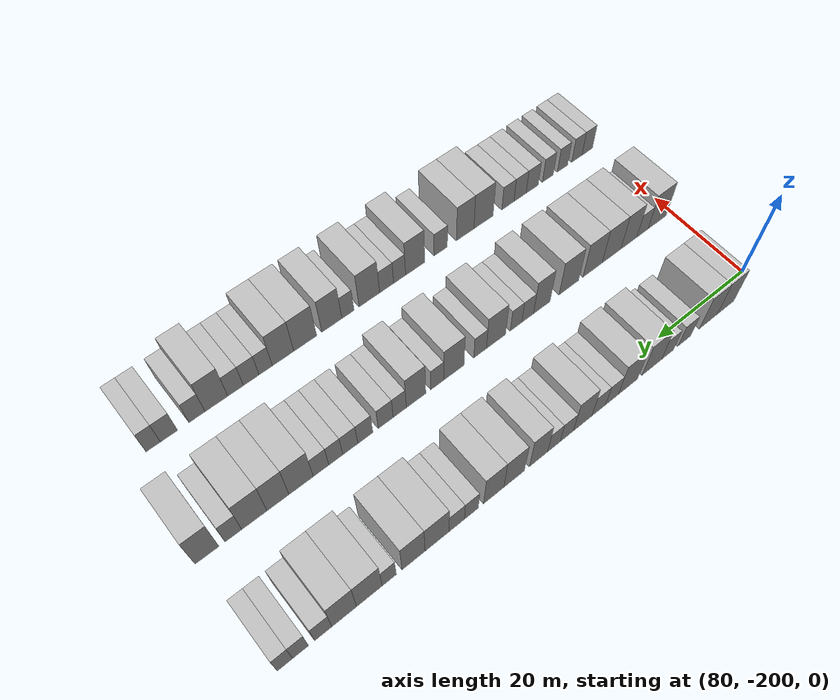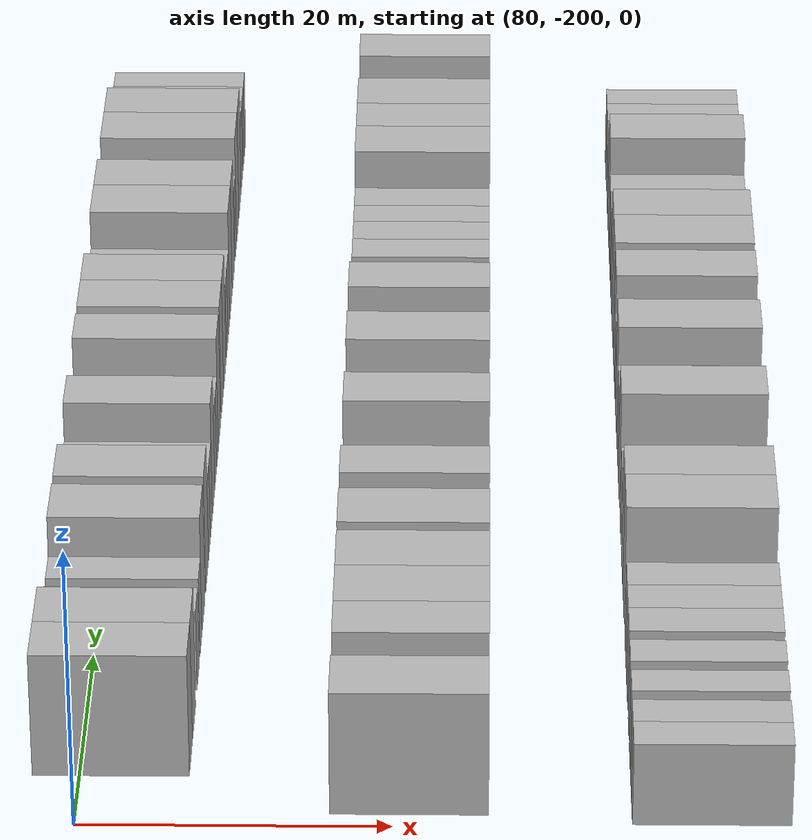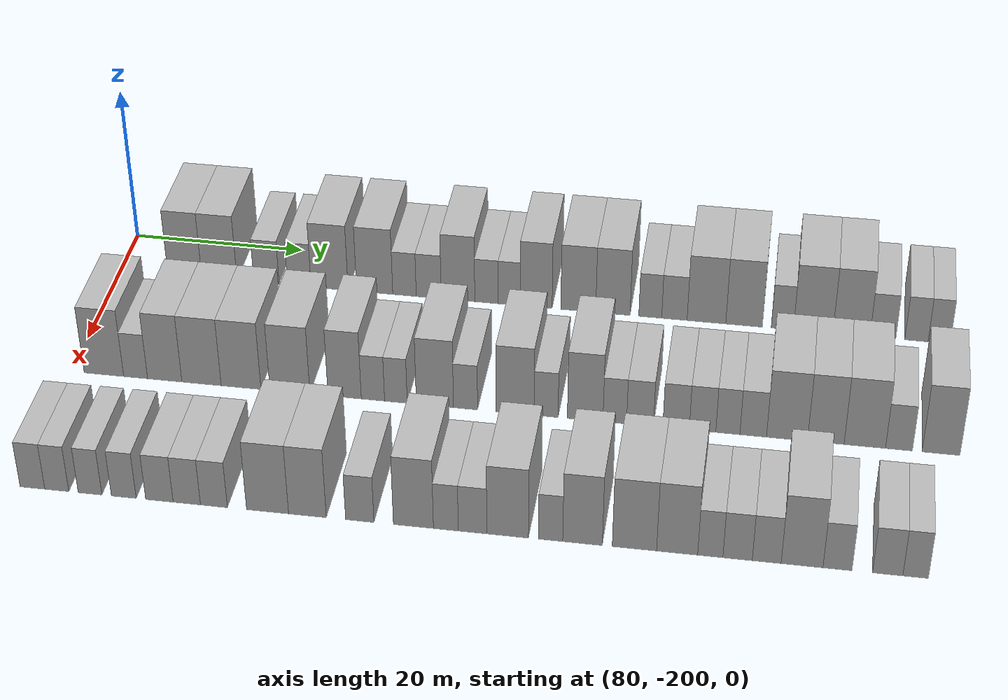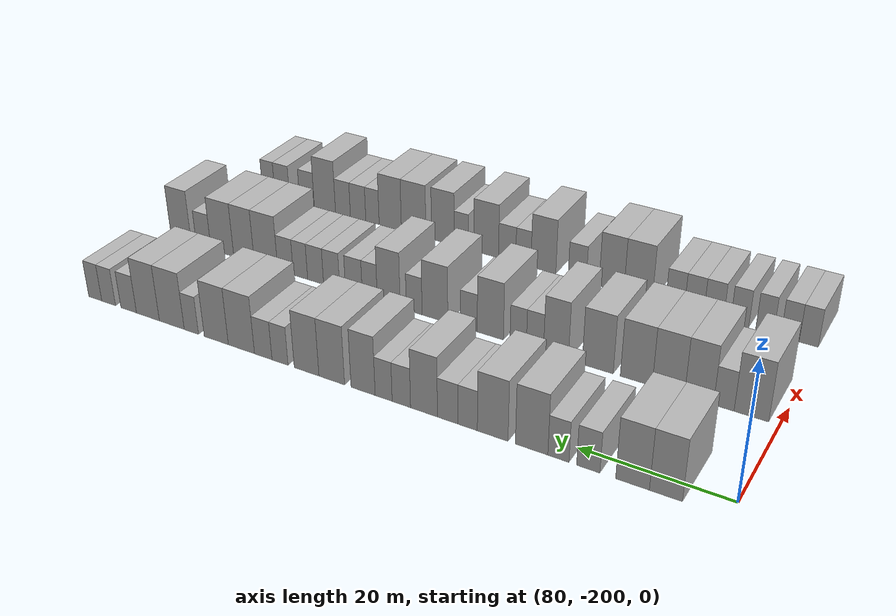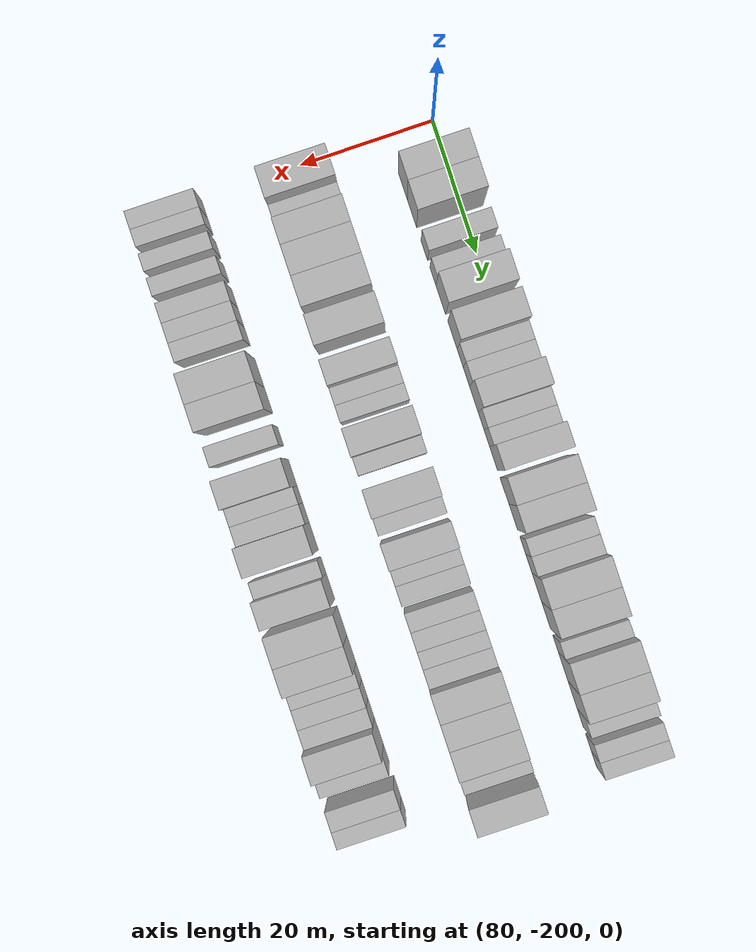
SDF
<sdf version="1.6">
 <world name="default">
  <model name="building_550">
   <static>1</static>
   <pose>82.0000 -192.3949 0 0.000000 0.000000 0.000000</pose>
   <link name="link">
    <pose>0 0 4.50 0 0 0</pose>
    <collision name="collision"><geometry><box><size>10.0000 4.0336 9.0000</size></box></geometry></collision>
    <visual name="visual">
     <cast_shadows>0</cast_shadows>
     <geometry><box><size>10.0000 4.0336 9.0000</size></box></geometry>
     <material>
      <script>
       <uri>model://HANNAS_wall/materials/scripts</uri>
       <uri>model://HANNAS_wall/materials/textures</uri>
       <name>vrc/HANNAS_wall</name>
      </script>
     </material>
    </visual>
   </link>
  </model>
  <model name="building_551">
   <static>1</static>
   <pose>82.0000 -188.2772 0 0.000000 0.000000 0.000000</pose>
   <link name="link">
    <pose>0 0 4.50 0 0 0</pose>
    <collision name="collision"><geometry><box><size>10.0000 4.2020 9.0000</size></box></geometry></collision>
    <visual name="visual">
     <cast_shadows>0</cast_shadows>
     <geometry><box><size>10.0000 4.2020 9.0000</size></box></geometry>
     <material>
      <script>
       <uri>model://HANNAS_wall/materials/scripts</uri>
       <uri>model://HANNAS_wall/materials/textures</uri>
       <name>vrc/HANNAS_wall</name>
      </script>
     </material>
    </visual>
   </link>
  </model>
  <model name="building_552">
   <static>1</static>
   <pose>82.0000 -182.6841 0 0.000000 0.000000 0.000000</pose>
   <link name="link">
    <pose>0 0 3.00 0 0 0</pose>
    <collision name="collision"><geometry><box><size>10.0000 2.9842 6.0000</size></box></geometry></collision>
    <visual name="visual">
     <cast_shadows>0</cast_shadows>
     <geometry><box><size>10.0000 2.9842 6.0000</size></box></geometry>
     <material>
      <script>
       <uri>model://HANNAS_wall/materials/scripts</uri>
       <uri>model://HANNAS_wall/materials/textures</uri>
       <name>vrc/HANNAS_wall</name>
      </script>
     </material>
    </visual>
   </link>
  </model>
  <model name="building_553">
   <static>1</static>
   <pose>82.0000 -178.8071 0 0.000000 0.000000 0.000000</pose>
   <link name="link">
    <pose>0 0 3.00 0 0 0</pose>
    <collision name="collision"><geometry><box><size>10.0000 2.7698 6.0000</size></box></geometry></collision>
    <visual name="visual">
     <cast_shadows>0</cast_shadows>
     <geometry><box><size>10.0000 2.7698 6.0000</size></box></geometry>
     <material>
      <script>
       <uri>model://HANNAS_wall/materials/scripts</uri>
       <uri>model://HANNAS_wall/materials/textures</uri>
       <name>vrc/HANNAS_wall</name>
      </script>
     </material>
    </visual>
   </link>
  </model>
  <model name="building_554">
   <static>1</static>
   <pose>82.0000 -175.2480 0 0.000000 0.000000 0.000000</pose>
   <link name="link">
    <pose>0 0 4.50 0 0 0</pose>
    <collision name="collision"><geometry><box><size>10.0000 4.3484 9.0000</size></box></geometry></collision>
    <visual name="visual">
     <cast_shadows>0</cast_shadows>
     <geometry><box><size>10.0000 4.3484 9.0000</size></box></geometry>
     <material>
      <script>
       <uri>model://HANNAS_wall/materials/scripts</uri>
       <uri>model://HANNAS_wall/materials/textures</uri>
       <name>vrc/HANNAS_wall</name>
      </script>
     </material>
    </visual>
   </link>
  </model>
  <model name="building_555">
   <static>1</static>
   <pose>82.0000 -169.9617 0 0.000000 0.000000 0.000000</pose>
   <link name="link">
    <pose>0 0 4.50 0 0 0</pose>
    <collision name="collision"><geometry><box><size>10.0000 4.2243 9.0000</size></box></geometry></collision>
    <visual name="visual">
     <cast_shadows>0</cast_shadows>
     <geometry><box><size>10.0000 4.2243 9.0000</size></box></geometry>
     <material>
      <script>
       <uri>model://HANNAS_wall/materials/scripts</uri>
       <uri>model://HANNAS_wall/materials/textures</uri>
       <name>vrc/HANNAS_wall</name>
      </script>
     </material>
    </visual>
   </link>
  </model>
  <model name="building_556">
   <static>1</static>
   <pose>82.0000 -166.4828 0 0.000000 0.000000 0.000000</pose>
   <link name="link">
    <pose>0 0 3.00 0 0 0</pose>
    <collision name="collision"><geometry><box><size>10.0000 2.7333 6.0000</size></box></geometry></collision>
    <visual name="visual">
     <cast_shadows>0</cast_shadows>
     <geometry><box><size>10.0000 2.7333 6.0000</size></box></geometry>
     <material>
      <script>
       <uri>model://HANNAS_wall/materials/scripts</uri>
       <uri>model://HANNAS_wall/materials/textures</uri>
       <name>vrc/HANNAS_wall</name>
      </script>
     </material>
    </visual>
   </link>
  </model>
  <model name="building_557">
   <static>1</static>
   <pose>82.0000 -163.6643 0 0.000000 0.000000 0.000000</pose>
   <link name="link">
    <pose>0 0 3.00 0 0 0</pose>
    <collision name="collision"><geometry><box><size>10.0000 2.9038 6.0000</size></box></geometry></collision>
    <visual name="visual">
     <cast_shadows>0</cast_shadows>
     <geometry><box><size>10.0000 2.9038 6.0000</size></box></geometry>
     <material>
      <script>
       <uri>model://HANNAS_wall/materials/scripts</uri>
       <uri>model://HANNAS_wall/materials/textures</uri>
       <name>vrc/HANNAS_wall</name>
      </script>
     </material>
    </visual>
   </link>
  </model>
  <model name="building_558">
   <static>1</static>
   <pose>82.0000 -160.2660 0 0.000000 0.000000 0.000000</pose>
   <link name="link">
    <pose>0 0 4.50 0 0 0</pose>
    <collision name="collision"><geometry><box><size>10.0000 3.8928 9.0000</size></box></geometry></collision>
    <visual name="visual">
     <cast_shadows>0</cast_shadows>
     <geometry><box><size>10.0000 3.8928 9.0000</size></box></geometry>
     <material>
      <script>
       <uri>model://HANNAS_wall/materials/scripts</uri>
       <uri>model://HANNAS_wall/materials/textures</uri>
       <name>vrc/HANNAS_wall</name>
      </script>
     </material>
    </visual>
   </link>
  </model>
  <model name="building_559">
   <static>1</static>
   <pose>82.0000 -156.9632 0 0.000000 0.000000 0.000000</pose>
   <link name="link">
    <pose>0 0 3.00 0 0 0</pose>
    <collision name="collision"><geometry><box><size>10.0000 2.7129 6.0000</size></box></geometry></collision>
    <visual name="visual">
     <cast_shadows>0</cast_shadows>
     <geometry><box><size>10.0000 2.7129 6.0000</size></box></geometry>
     <material>
      <script>
       <uri>model://HANNAS_wall/materials/scripts</uri>
       <uri>model://HANNAS_wall/materials/textures</uri>
       <name>vrc/HANNAS_wall</name>
      </script>
     </material>
    </visual>
   </link>
  </model>
  <model name="building_560">
   <static>1</static>
   <pose>82.0000 -154.3389 0 0.000000 0.000000 0.000000</pose>
   <link name="link">
    <pose>0 0 3.00 0 0 0</pose>
    <collision name="collision"><geometry><box><size>10.0000 2.5356 6.0000</size></box></geometry></collision>
    <visual name="visual">
     <cast_shadows>0</cast_shadows>
     <geometry><box><size>10.0000 2.5356 6.0000</size></box></geometry>
     <material>
      <script>
       <uri>model://HANNAS_wall/materials/scripts</uri>
       <uri>model://HANNAS_wall/materials/textures</uri>
       <name>vrc/HANNAS_wall</name>
      </script>
     </material>
    </visual>
   </link>
  </model>
  <model name="building_561">
   <static>1</static>
   <pose>82.0000 -151.2431 0 0.000000 0.000000 0.000000</pose>
   <link name="link">
    <pose>0 0 4.50 0 0 0</pose>
    <collision name="collision"><geometry><box><size>10.0000 3.6559 9.0000</size></box></geometry></collision>
    <visual name="visual">
     <cast_shadows>0</cast_shadows>
     <geometry><box><size>10.0000 3.6559 9.0000</size></box></geometry>
     <material>
      <script>
       <uri>model://HANNAS_wall/materials/scripts</uri>
       <uri>model://HANNAS_wall/materials/textures</uri>
       <name>vrc/HANNAS_wall</name>
      </script>
     </material>
    </visual>
   </link>
  </model>
  <model name="building_562">
   <static>1</static>
   <pose>82.0000 -146.4189 0 0.000000 0.000000 0.000000</pose>
   <link name="link">
    <pose>0 0 4.50 0 0 0</pose>
    <collision name="collision"><geometry><box><size>10.0000 3.9926 9.0000</size></box></geometry></collision>
    <visual name="visual">
     <cast_shadows>0</cast_shadows>
     <geometry><box><size>10.0000 3.9926 9.0000</size></box></geometry>
     <material>
      <script>
       <uri>model://HANNAS_wall/materials/scripts</uri>
       <uri>model://HANNAS_wall/materials/textures</uri>
       <name>vrc/HANNAS_wall</name>
      </script>
     </material>
    </visual>
   </link>
  </model>
  <model name="building_563">
   <static>1</static>
   <pose>82.0000 -142.4667 0 0.000000 0.000000 0.000000</pose>
   <link name="link">
    <pose>0 0 4.50 0 0 0</pose>
    <collision name="collision"><geometry><box><size>10.0000 3.9117 9.0000</size></box></geometry></collision>
    <visual name="visual">
     <cast_shadows>0</cast_shadows>
     <geometry><box><size>10.0000 3.9117 9.0000</size></box></geometry>
     <material>
      <script>
       <uri>model://HANNAS_wall/materials/scripts</uri>
       <uri>model://HANNAS_wall/materials/textures</uri>
       <name>vrc/HANNAS_wall</name>
      </script>
     </material>
    </visual>
   </link>
  </model>
  <model name="building_564">
   <static>1</static>
   <pose>82.0000 -138.2128 0 0.000000 0.000000 0.000000</pose>
   <link name="link">
    <pose>0 0 3.00 0 0 0</pose>
    <collision name="collision"><geometry><box><size>10.0000 2.5961 6.0000</size></box></geometry></collision>
    <visual name="visual">
     <cast_shadows>0</cast_shadows>
     <geometry><box><size>10.0000 2.5961 6.0000</size></box></geometry>
     <material>
      <script>
       <uri>model://HANNAS_wall/materials/scripts</uri>
       <uri>model://HANNAS_wall/materials/textures</uri>
       <name>vrc/HANNAS_wall</name>
      </script>
     </material>
    </visual>
   </link>
  </model>
  <model name="building_565">
   <static>1</static>
   <pose>82.0000 -135.4760 0 0.000000 0.000000 0.000000</pose>
   <link name="link">
    <pose>0 0 3.00 0 0 0</pose>
    <collision name="collision"><geometry><box><size>10.0000 2.8774 6.0000</size></box></geometry></collision>
    <visual name="visual">
     <cast_shadows>0</cast_shadows>
     <geometry><box><size>10.0000 2.8774 6.0000</size></box></geometry>
     <material>
      <script>
       <uri>model://HANNAS_wall/materials/scripts</uri>
       <uri>model://HANNAS_wall/materials/textures</uri>
       <name>vrc/HANNAS_wall</name>
      </script>
     </material>
    </visual>
   </link>
  </model>
  <model name="building_566">
   <static>1</static>
   <pose>82.0000 -131.8526 0 0.000000 0.000000 0.000000</pose>
   <link name="link">
    <pose>0 0 4.50 0 0 0</pose>
    <collision name="collision"><geometry><box><size>10.0000 4.3695 9.0000</size></box></geometry></collision>
    <visual name="visual">
     <cast_shadows>0</cast_shadows>
     <geometry><box><size>10.0000 4.3695 9.0000</size></box></geometry>
     <material>
      <script>
       <uri>model://HANNAS_wall/materials/scripts</uri>
       <uri>model://HANNAS_wall/materials/textures</uri>
       <name>vrc/HANNAS_wall</name>
      </script>
     </material>
    </visual>
   </link>
  </model>
  <model name="building_567">
   <static>1</static>
   <pose>82.0000 -127.6146 0 0.000000 0.000000 0.000000</pose>
   <link name="link">
    <pose>0 0 4.50 0 0 0</pose>
    <collision name="collision"><geometry><box><size>10.0000 4.1065 9.0000</size></box></geometry></collision>
    <visual name="visual">
     <cast_shadows>0</cast_shadows>
     <geometry><box><size>10.0000 4.1065 9.0000</size></box></geometry>
     <material>
      <script>
       <uri>model://HANNAS_wall/materials/scripts</uri>
       <uri>model://HANNAS_wall/materials/textures</uri>
       <name>vrc/HANNAS_wall</name>
      </script>
     </material>
    </visual>
   </link>
  </model>
  <model name="building_568">
   <static>1</static>
   <pose>82.0000 -123.3202 0 0.000000 0.000000 0.000000</pose>
   <link name="link">
    <pose>0 0 3.00 0 0 0</pose>
    <collision name="collision"><geometry><box><size>10.0000 2.4823 6.0000</size></box></geometry></collision>
    <visual name="visual">
     <cast_shadows>0</cast_shadows>
     <geometry><box><size>10.0000 2.4823 6.0000</size></box></geometry>
     <material>
      <script>
       <uri>model://HANNAS_wall/materials/scripts</uri>
       <uri>model://HANNAS_wall/materials/textures</uri>
       <name>vrc/HANNAS_wall</name>
      </script>
     </material>
    </visual>
   </link>
  </model>
  <model name="building_569">
   <static>1</static>
   <pose>82.0000 -119.8777 0 0.000000 0.000000 0.000000</pose>
   <link name="link">
    <pose>0 0 4.50 0 0 0</pose>
    <collision name="collision"><geometry><box><size>10.0000 4.4027 9.0000</size></box></geometry></collision>
    <visual name="visual">
     <cast_shadows>0</cast_shadows>
     <geometry><box><size>10.0000 4.4027 9.0000</size></box></geometry>
     <material>
      <script>
       <uri>model://HANNAS_wall/materials/scripts</uri>
       <uri>model://HANNAS_wall/materials/textures</uri>
       <name>vrc/HANNAS_wall</name>
      </script>
     </material>
    </visual>
   </link>
  </model>
  <model name="building_570">
   <static>1</static>
   <pose>82.0000 -115.6081 0 0.000000 0.000000 0.000000</pose>
   <link name="link">
    <pose>0 0 4.50 0 0 0</pose>
    <collision name="collision"><geometry><box><size>10.0000 4.1366 9.0000</size></box></geometry></collision>
    <visual name="visual">
     <cast_shadows>0</cast_shadows>
     <geometry><box><size>10.0000 4.1366 9.0000</size></box></geometry>
     <material>
      <script>
       <uri>model://HANNAS_wall/materials/scripts</uri>
       <uri>model://HANNAS_wall/materials/textures</uri>
       <name>vrc/HANNAS_wall</name>
      </script>
     </material>
    </visual>
   </link>
  </model>
  <model name="building_571">
   <static>1</static>
   <pose>82.0000 -112.1113 0 0.000000 0.000000 0.000000</pose>
   <link name="link">
    <pose>0 0 3.00 0 0 0</pose>
    <collision name="collision"><geometry><box><size>10.0000 2.8570 6.0000</size></box></geometry></collision>
    <visual name="visual">
     <cast_shadows>0</cast_shadows>
     <geometry><box><size>10.0000 2.8570 6.0000</size></box></geometry>
     <material>
      <script>
       <uri>model://HANNAS_wall/materials/scripts</uri>
       <uri>model://HANNAS_wall/materials/textures</uri>
       <name>vrc/HANNAS_wall</name>
      </script>
     </material>
    </visual>
   </link>
  </model>
  <model name="building_572">
   <static>1</static>
   <pose>82.0000 -108.4005 0 0.000000 0.000000 0.000000</pose>
   <link name="link">
    <pose>0 0 3.00 0 0 0</pose>
    <collision name="collision"><geometry><box><size>10.0000 2.5646 6.0000</size></box></geometry></collision>
    <visual name="visual">
     <cast_shadows>0</cast_shadows>
     <geometry><box><size>10.0000 2.5646 6.0000</size></box></geometry>
     <material>
      <script>
       <uri>model://HANNAS_wall/materials/scripts</uri>
       <uri>model://HANNAS_wall/materials/textures</uri>
       <name>vrc/HANNAS_wall</name>
      </script>
     </material>
    </visual>
   </link>
  </model>
  <model name="building_573">
   <static>1</static>
   <pose>82.0000 -105.8975 0 0.000000 0.000000 0.000000</pose>
   <link name="link">
    <pose>0 0 3.00 0 0 0</pose>
    <collision name="collision"><geometry><box><size>10.0000 2.4415 6.0000</size></box></geometry></collision>
    <visual name="visual">
     <cast_shadows>0</cast_shadows>
     <geometry><box><size>10.0000 2.4415 6.0000</size></box></geometry>
     <material>
      <script>
       <uri>model://HANNAS_wall/materials/scripts</uri>
       <uri>model://HANNAS_wall/materials/textures</uri>
       <name>vrc/HANNAS_wall</name>
      </script>
     </material>
    </visual>
   </link>
  </model>
  <model name="building_721">
   <static>1</static>
   <pose>101.0000 -196.3710 0 0.000000 0.000000 0.000000</pose>
   <link name="link">
    <pose>0 0 4.50 0 0 0</pose>
    <collision name="collision"><geometry><box><size>10.0000 4.4583 9.0000</size></box></geometry></collision>
    <visual name="visual">
     <cast_shadows>0</cast_shadows>
     <geometry><box><size>10.0000 4.4583 9.0000</size></box></geometry>
     <material>
      <script>
       <uri>model://HANNAS_wall/materials/scripts</uri>
       <uri>model://HANNAS_wall/materials/textures</uri>
       <name>vrc/HANNAS_wall</name>
      </script>
     </material>
    </visual>
   </link>
  </model>
  <model name="building_722">
   <static>1</static>
   <pose>101.0000 -192.7944 0 0.000000 0.000000 0.000000</pose>
   <link name="link">
    <pose>0 0 3.00 0 0 0</pose>
    <collision name="collision"><geometry><box><size>10.0000 2.6951 6.0000</size></box></geometry></collision>
    <visual name="visual">
     <cast_shadows>0</cast_shadows>
     <geometry><box><size>10.0000 2.6951 6.0000</size></box></geometry>
     <material>
      <script>
       <uri>model://HANNAS_wall/materials/scripts</uri>
       <uri>model://HANNAS_wall/materials/textures</uri>
       <name>vrc/HANNAS_wall</name>
      </script>
     </material>
    </visual>
   </link>
  </model>
  <model name="building_723">
   <static>1</static>
   <pose>101.0000 -189.5217 0 0.000000 0.000000 0.000000</pose>
   <link name="link">
    <pose>0 0 4.50 0 0 0</pose>
    <collision name="collision"><geometry><box><size>10.0000 3.8502 9.0000</size></box></geometry></collision>
    <visual name="visual">
     <cast_shadows>0</cast_shadows>
     <geometry><box><size>10.0000 3.8502 9.0000</size></box></geometry>
     <material>
      <script>
       <uri>model://HANNAS_wall/materials/scripts</uri>
       <uri>model://HANNAS_wall/materials/textures</uri>
       <name>vrc/HANNAS_wall</name>
      </script>
     </material>
    </visual>
   </link>
  </model>
  <model name="building_724">
   <static>1</static>
   <pose>101.0000 -185.3996 0 0.000000 0.000000 0.000000</pose>
   <link name="link">
    <pose>0 0 4.50 0 0 0</pose>
    <collision name="collision"><geometry><box><size>10.0000 4.3941 9.0000</size></box></geometry></collision>
    <visual name="visual">
     <cast_shadows>0</cast_shadows>
     <geometry><box><size>10.0000 4.3941 9.0000</size></box></geometry>
     <material>
      <script>
       <uri>model://HANNAS_wall/materials/scripts</uri>
       <uri>model://HANNAS_wall/materials/textures</uri>
       <name>vrc/HANNAS_wall</name>
      </script>
     </material>
    </visual>
   </link>
  </model>
  <model name="building_725">
   <static>1</static>
   <pose>101.0000 -180.9871 0 0.000000 0.000000 0.000000</pose>
   <link name="link">
    <pose>0 0 4.50 0 0 0</pose>
    <collision name="collision"><geometry><box><size>10.0000 4.4308 9.0000</size></box></geometry></collision>
    <visual name="visual">
     <cast_shadows>0</cast_shadows>
     <geometry><box><size>10.0000 4.4308 9.0000</size></box></geometry>
     <material>
      <script>
       <uri>model://HANNAS_wall/materials/scripts</uri>
       <uri>model://HANNAS_wall/materials/textures</uri>
       <name>vrc/HANNAS_wall</name>
      </script>
     </material>
    </visual>
   </link>
  </model>
  <model name="building_726">
   <static>1</static>
   <pose>101.0000 -175.5556 0 0.000000 0.000000 0.000000</pose>
   <link name="link">
    <pose>0 0 4.50 0 0 0</pose>
    <collision name="collision"><geometry><box><size>10.0000 4.4323 9.0000</size></box></geometry></collision>
    <visual name="visual">
     <cast_shadows>0</cast_shadows>
     <geometry><box><size>10.0000 4.4323 9.0000</size></box></geometry>
     <material>
      <script>
       <uri>model://HANNAS_wall/materials/scripts</uri>
       <uri>model://HANNAS_wall/materials/textures</uri>
       <name>vrc/HANNAS_wall</name>
      </script>
     </material>
    </visual>
   </link>
  </model>
  <model name="building_727">
   <static>1</static>
   <pose>101.0000 -169.5079 0 0.000000 0.000000 0.000000</pose>
   <link name="link">
    <pose>0 0 4.50 0 0 0</pose>
    <collision name="collision"><geometry><box><size>10.0000 3.6632 9.0000</size></box></geometry></collision>
    <visual name="visual">
     <cast_shadows>0</cast_shadows>
     <geometry><box><size>10.0000 3.6632 9.0000</size></box></geometry>
     <material>
      <script>
       <uri>model://HANNAS_wall/materials/scripts</uri>
       <uri>model://HANNAS_wall/materials/textures</uri>
       <name>vrc/HANNAS_wall</name>
      </script>
     </material>
    </visual>
   </link>
  </model>
  <model name="building_728">
   <static>1</static>
   <pose>101.0000 -166.3988 0 0.000000 0.000000 0.000000</pose>
   <link name="link">
    <pose>0 0 3.00 0 0 0</pose>
    <collision name="collision"><geometry><box><size>10.0000 2.5551 6.0000</size></box></geometry></collision>
    <visual name="visual">
     <cast_shadows>0</cast_shadows>
     <geometry><box><size>10.0000 2.5551 6.0000</size></box></geometry>
     <material>
      <script>
       <uri>model://HANNAS_wall/materials/scripts</uri>
       <uri>model://HANNAS_wall/materials/textures</uri>
       <name>vrc/HANNAS_wall</name>
      </script>
     </material>
    </visual>
   </link>
  </model>
  <model name="building_729">
   <static>1</static>
   <pose>101.0000 -163.8819 0 0.000000 0.000000 0.000000</pose>
   <link name="link">
    <pose>0 0 3.00 0 0 0</pose>
    <collision name="collision"><geometry><box><size>10.0000 2.4788 6.0000</size></box></geometry></collision>
    <visual name="visual">
     <cast_shadows>0</cast_shadows>
     <geometry><box><size>10.0000 2.4788 6.0000</size></box></geometry>
     <material>
      <script>
       <uri>model://HANNAS_wall/materials/scripts</uri>
       <uri>model://HANNAS_wall/materials/textures</uri>
       <name>vrc/HANNAS_wall</name>
      </script>
     </material>
    </visual>
   </link>
  </model>
  <model name="building_730">
   <static>1</static>
   <pose>101.0000 -159.6176 0 0.000000 0.000000 0.000000</pose>
   <link name="link">
    <pose>0 0 4.50 0 0 0</pose>
    <collision name="collision"><geometry><box><size>10.0000 4.0498 9.0000</size></box></geometry></collision>
    <visual name="visual">
     <cast_shadows>0</cast_shadows>
     <geometry><box><size>10.0000 4.0498 9.0000</size></box></geometry>
     <material>
      <script>
       <uri>model://HANNAS_wall/materials/scripts</uri>
       <uri>model://HANNAS_wall/materials/textures</uri>
       <name>vrc/HANNAS_wall</name>
      </script>
     </material>
    </visual>
   </link>
  </model>
  <model name="building_731">
   <static>1</static>
   <pose>101.0000 -156.2826 0 0.000000 0.000000 0.000000</pose>
   <link name="link">
    <pose>0 0 3.00 0 0 0</pose>
    <collision name="collision"><geometry><box><size>10.0000 2.6202 6.0000</size></box></geometry></collision>
    <visual name="visual">
     <cast_shadows>0</cast_shadows>
     <geometry><box><size>10.0000 2.6202 6.0000</size></box></geometry>
     <material>
      <script>
       <uri>model://HANNAS_wall/materials/scripts</uri>
       <uri>model://HANNAS_wall/materials/textures</uri>
       <name>vrc/HANNAS_wall</name>
      </script>
     </material>
    </visual>
   </link>
  </model>
  <model name="building_732">
   <static>1</static>
   <pose>101.0000 -150.9069 0 0.000000 0.000000 0.000000</pose>
   <link name="link">
    <pose>0 0 4.50 0 0 0</pose>
    <collision name="collision"><geometry><box><size>10.0000 4.1312 9.0000</size></box></geometry></collision>
    <visual name="visual">
     <cast_shadows>0</cast_shadows>
     <geometry><box><size>10.0000 4.1312 9.0000</size></box></geometry>
     <material>
      <script>
       <uri>model://HANNAS_wall/materials/scripts</uri>
       <uri>model://HANNAS_wall/materials/textures</uri>
       <name>vrc/HANNAS_wall</name>
      </script>
     </material>
    </visual>
   </link>
  </model>
  <model name="building_733">
   <static>1</static>
   <pose>101.0000 -147.5551 0 0.000000 0.000000 0.000000</pose>
   <link name="link">
    <pose>0 0 3.00 0 0 0</pose>
    <collision name="collision"><geometry><box><size>10.0000 2.5724 6.0000</size></box></geometry></collision>
    <visual name="visual">
     <cast_shadows>0</cast_shadows>
     <geometry><box><size>10.0000 2.5724 6.0000</size></box></geometry>
     <material>
      <script>
       <uri>model://HANNAS_wall/materials/scripts</uri>
       <uri>model://HANNAS_wall/materials/textures</uri>
       <name>vrc/HANNAS_wall</name>
      </script>
     </material>
    </visual>
   </link>
  </model>
  <model name="building_734">
   <static>1</static>
   <pose>101.0000 -143.3605 0 0.000000 0.000000 0.000000</pose>
   <link name="link">
    <pose>0 0 4.50 0 0 0</pose>
    <collision name="collision"><geometry><box><size>10.0000 3.8166 9.0000</size></box></geometry></collision>
    <visual name="visual">
     <cast_shadows>0</cast_shadows>
     <geometry><box><size>10.0000 3.8166 9.0000</size></box></geometry>
     <material>
      <script>
       <uri>model://HANNAS_wall/materials/scripts</uri>
       <uri>model://HANNAS_wall/materials/textures</uri>
       <name>vrc/HANNAS_wall</name>
      </script>
     </material>
    </visual>
   </link>
  </model>
  <model name="building_735">
   <static>1</static>
   <pose>101.0000 -140.1880 0 0.000000 0.000000 0.000000</pose>
   <link name="link">
    <pose>0 0 3.00 0 0 0</pose>
    <collision name="collision"><geometry><box><size>10.0000 2.5285 6.0000</size></box></geometry></collision>
    <visual name="visual">
     <cast_shadows>0</cast_shadows>
     <geometry><box><size>10.0000 2.5285 6.0000</size></box></geometry>
     <material>
      <script>
       <uri>model://HANNAS_wall/materials/scripts</uri>
       <uri>model://HANNAS_wall/materials/textures</uri>
       <name>vrc/HANNAS_wall</name>
      </script>
     </material>
    </visual>
   </link>
  </model>
  <model name="building_736">
   <static>1</static>
   <pose>101.0000 -137.4889 0 0.000000 0.000000 0.000000</pose>
   <link name="link">
    <pose>0 0 3.00 0 0 0</pose>
    <collision name="collision"><geometry><box><size>10.0000 2.8697 6.0000</size></box></geometry></collision>
    <visual name="visual">
     <cast_shadows>0</cast_shadows>
     <geometry><box><size>10.0000 2.8697 6.0000</size></box></geometry>
     <material>
      <script>
       <uri>model://HANNAS_wall/materials/scripts</uri>
       <uri>model://HANNAS_wall/materials/textures</uri>
       <name>vrc/HANNAS_wall</name>
      </script>
     </material>
    </visual>
   </link>
  </model>
  <model name="building_737">
   <static>1</static>
   <pose>101.0000 -133.6469 0 0.000000 0.000000 0.000000</pose>
   <link name="link">
    <pose>0 0 3.00 0 0 0</pose>
    <collision name="collision"><geometry><box><size>10.0000 2.8142 6.0000</size></box></geometry></collision>
    <visual name="visual">
     <cast_shadows>0</cast_shadows>
     <geometry><box><size>10.0000 2.8142 6.0000</size></box></geometry>
     <material>
      <script>
       <uri>model://HANNAS_wall/materials/scripts</uri>
       <uri>model://HANNAS_wall/materials/textures</uri>
       <name>vrc/HANNAS_wall</name>
      </script>
     </material>
    </visual>
   </link>
  </model>
  <model name="building_738">
   <static>1</static>
   <pose>101.0000 -130.8366 0 0.000000 0.000000 0.000000</pose>
   <link name="link">
    <pose>0 0 3.00 0 0 0</pose>
    <collision name="collision"><geometry><box><size>10.0000 2.8064 6.0000</size></box></geometry></collision>
    <visual name="visual">
     <cast_shadows>0</cast_shadows>
     <geometry><box><size>10.0000 2.8064 6.0000</size></box></geometry>
     <material>
      <script>
       <uri>model://HANNAS_wall/materials/scripts</uri>
       <uri>model://HANNAS_wall/materials/textures</uri>
       <name>vrc/HANNAS_wall</name>
      </script>
     </material>
    </visual>
   </link>
  </model>
  <model name="building_739">
   <static>1</static>
   <pose>101.0000 -128.1615 0 0.000000 0.000000 0.000000</pose>
   <link name="link">
    <pose>0 0 3.00 0 0 0</pose>
    <collision name="collision"><geometry><box><size>10.0000 2.5440 6.0000</size></box></geometry></collision>
    <visual name="visual">
     <cast_shadows>0</cast_shadows>
     <geometry><box><size>10.0000 2.5440 6.0000</size></box></geometry>
     <material>
      <script>
       <uri>model://HANNAS_wall/materials/scripts</uri>
       <uri>model://HANNAS_wall/materials/textures</uri>
       <name>vrc/HANNAS_wall</name>
      </script>
     </material>
    </visual>
   </link>
  </model>
  <model name="building_740">
   <static>1</static>
   <pose>101.0000 -125.4837 0 0.000000 0.000000 0.000000</pose>
   <link name="link">
    <pose>0 0 3.00 0 0 0</pose>
    <collision name="collision"><geometry><box><size>10.0000 2.8116 6.0000</size></box></geometry></collision>
    <visual name="visual">
     <cast_shadows>0</cast_shadows>
     <geometry><box><size>10.0000 2.8116 6.0000</size></box></geometry>
     <material>
      <script>
       <uri>model://HANNAS_wall/materials/scripts</uri>
       <uri>model://HANNAS_wall/materials/textures</uri>
       <name>vrc/HANNAS_wall</name>
      </script>
     </material>
    </visual>
   </link>
  </model>
  <model name="building_741">
   <static>1</static>
   <pose>101.0000 -121.9263 0 0.000000 0.000000 0.000000</pose>
   <link name="link">
    <pose>0 0 4.50 0 0 0</pose>
    <collision name="collision"><geometry><box><size>10.0000 4.3032 9.0000</size></box></geometry></collision>
    <visual name="visual">
     <cast_shadows>0</cast_shadows>
     <geometry><box><size>10.0000 4.3032 9.0000</size></box></geometry>
     <material>
      <script>
       <uri>model://HANNAS_wall/materials/scripts</uri>
       <uri>model://HANNAS_wall/materials/textures</uri>
       <name>vrc/HANNAS_wall</name>
      </script>
     </material>
    </visual>
   </link>
  </model>
  <model name="building_742">
   <static>1</static>
   <pose>101.0000 -117.8588 0 0.000000 0.000000 0.000000</pose>
   <link name="link">
    <pose>0 0 4.50 0 0 0</pose>
    <collision name="collision"><geometry><box><size>10.0000 3.8317 9.0000</size></box></geometry></collision>
    <visual name="visual">
     <cast_shadows>0</cast_shadows>
     <geometry><box><size>10.0000 3.8317 9.0000</size></box></geometry>
     <material>
      <script>
       <uri>model://HANNAS_wall/materials/scripts</uri>
       <uri>model://HANNAS_wall/materials/textures</uri>
       <name>vrc/HANNAS_wall</name>
      </script>
     </material>
    </visual>
   </link>
  </model>
  <model name="building_743">
   <static>1</static>
   <pose>101.0000 -113.7817 0 0.000000 0.000000 0.000000</pose>
   <link name="link">
    <pose>0 0 4.50 0 0 0</pose>
    <collision name="collision"><geometry><box><size>10.0000 4.3226 9.0000</size></box></geometry></collision>
    <visual name="visual">
     <cast_shadows>0</cast_shadows>
     <geometry><box><size>10.0000 4.3226 9.0000</size></box></geometry>
     <material>
      <script>
       <uri>model://HANNAS_wall/materials/scripts</uri>
       <uri>model://HANNAS_wall/materials/textures</uri>
       <name>vrc/HANNAS_wall</name>
      </script>
     </material>
    </visual>
   </link>
  </model>
  <model name="building_744">
   <static>1</static>
   <pose>101.0000 -110.2200 0 0.000000 0.000000 0.000000</pose>
   <link name="link">
    <pose>0 0 3.00 0 0 0</pose>
    <collision name="collision"><geometry><box><size>10.0000 2.8007 6.0000</size></box></geometry></collision>
    <visual name="visual">
     <cast_shadows>0</cast_shadows>
     <geometry><box><size>10.0000 2.8007 6.0000</size></box></geometry>
     <material>
      <script>
       <uri>model://HANNAS_wall/materials/scripts</uri>
       <uri>model://HANNAS_wall/materials/textures</uri>
       <name>vrc/HANNAS_wall</name>
      </script>
     </material>
    </visual>
   </link>
  </model>
  <model name="building_745">
   <static>1</static>
   <pose>101.0000 -105.8613 0 0.000000 0.000000 0.000000</pose>
   <link name="link">
    <pose>0 0 4.50 0 0 0</pose>
    <collision name="collision"><geometry><box><size>10.0000 3.9167 9.0000</size></box></geometry></collision>
    <visual name="visual">
     <cast_shadows>0</cast_shadows>
     <geometry><box><size>10.0000 3.9167 9.0000</size></box></geometry>
     <material>
      <script>
       <uri>model://HANNAS_wall/materials/scripts</uri>
       <uri>model://HANNAS_wall/materials/textures</uri>
       <name>vrc/HANNAS_wall</name>
      </script>
     </material>
    </visual>
   </link>
  </model>
  <model name="building_897">
   <static>1</static>
   <pose>120.0000 -198.2375 0 0.000000 0.000000 0.000000</pose>
   <link name="link">
    <pose>0 0 3.00 0 0 0</pose>
    <collision name="collision"><geometry><box><size>10.0000 2.6265 6.0000</size></box></geometry></collision>
    <visual name="visual">
     <cast_shadows>0</cast_shadows>
     <geometry><box><size>10.0000 2.6265 6.0000</size></box></geometry>
     <material>
      <script>
       <uri>model://HANNAS_wall/materials/scripts</uri>
       <uri>model://HANNAS_wall/materials/textures</uri>
       <name>vrc/HANNAS_wall</name>
      </script>
     </material>
    </visual>
   </link>
  </model>
  <model name="building_898">
   <static>1</static>
   <pose>120.0000 -195.6497 0 0.000000 0.000000 0.000000</pose>
   <link name="link">
    <pose>0 0 3.00 0 0 0</pose>
    <collision name="collision"><geometry><box><size>10.0000 2.5490 6.0000</size></box></geometry></collision>
    <visual name="visual">
     <cast_shadows>0</cast_shadows>
     <geometry><box><size>10.0000 2.5490 6.0000</size></box></geometry>
     <material>
      <script>
       <uri>model://HANNAS_wall/materials/scripts</uri>
       <uri>model://HANNAS_wall/materials/textures</uri>
       <name>vrc/HANNAS_wall</name>
      </script>
     </material>
    </visual>
   </link>
  </model>
  <model name="building_899">
   <static>1</static>
   <pose>120.0000 -192.1184 0 0.000000 0.000000 0.000000</pose>
   <link name="link">
    <pose>0 0 3.00 0 0 0</pose>
    <collision name="collision"><geometry><box><size>10.0000 2.5136 6.0000</size></box></geometry></collision>
    <visual name="visual">
     <cast_shadows>0</cast_shadows>
     <geometry><box><size>10.0000 2.5136 6.0000</size></box></geometry>
     <material>
      <script>
       <uri>model://HANNAS_wall/materials/scripts</uri>
       <uri>model://HANNAS_wall/materials/textures</uri>
       <name>vrc/HANNAS_wall</name>
      </script>
     </material>
    </visual>
   </link>
  </model>
  <model name="building_900">
   <static>1</static>
   <pose>120.0000 -188.5546 0 0.000000 0.000000 0.000000</pose>
   <link name="link">
    <pose>0 0 3.00 0 0 0</pose>
    <collision name="collision"><geometry><box><size>10.0000 2.6140 6.0000</size></box></geometry></collision>
    <visual name="visual">
     <cast_shadows>0</cast_shadows>
     <geometry><box><size>10.0000 2.6140 6.0000</size></box></geometry>
     <material>
      <script>
       <uri>model://HANNAS_wall/materials/scripts</uri>
       <uri>model://HANNAS_wall/materials/textures</uri>
       <name>vrc/HANNAS_wall</name>
      </script>
     </material>
    </visual>
   </link>
  </model>
  <model name="building_901">
   <static>1</static>
   <pose>120.0000 -184.8067 0 0.000000 0.000000 0.000000</pose>
   <link name="link">
    <pose>0 0 3.00 0 0 0</pose>
    <collision name="collision"><geometry><box><size>10.0000 2.8819 6.0000</size></box></geometry></collision>
    <visual name="visual">
     <cast_shadows>0</cast_shadows>
     <geometry><box><size>10.0000 2.8819 6.0000</size></box></geometry>
     <material>
      <script>
       <uri>model://HANNAS_wall/materials/scripts</uri>
       <uri>model://HANNAS_wall/materials/textures</uri>
       <name>vrc/HANNAS_wall</name>
      </script>
     </material>
    </visual>
   </link>
  </model>
  <model name="building_902">
   <static>1</static>
   <pose>120.0000 -181.9341 0 0.000000 0.000000 0.000000</pose>
   <link name="link">
    <pose>0 0 3.00 0 0 0</pose>
    <collision name="collision"><geometry><box><size>10.0000 2.8633 6.0000</size></box></geometry></collision>
    <visual name="visual">
     <cast_shadows>0</cast_shadows>
     <geometry><box><size>10.0000 2.8633 6.0000</size></box></geometry>
     <material>
      <script>
       <uri>model://HANNAS_wall/materials/scripts</uri>
       <uri>model://HANNAS_wall/materials/textures</uri>
       <name>vrc/HANNAS_wall</name>
      </script>
     </material>
    </visual>
   </link>
  </model>
  <model name="building_903">
   <static>1</static>
   <pose>120.0000 -179.0962 0 0.000000 0.000000 0.000000</pose>
   <link name="link">
    <pose>0 0 3.00 0 0 0</pose>
    <collision name="collision"><geometry><box><size>10.0000 2.8125 6.0000</size></box></geometry></collision>
    <visual name="visual">
     <cast_shadows>0</cast_shadows>
     <geometry><box><size>10.0000 2.8125 6.0000</size></box></geometry>
     <material>
      <script>
       <uri>model://HANNAS_wall/materials/scripts</uri>
       <uri>model://HANNAS_wall/materials/textures</uri>
       <name>vrc/HANNAS_wall</name>
      </script>
     </material>
    </visual>
   </link>
  </model>
  <model name="building_904">
   <static>1</static>
   <pose>120.0000 -173.5109 0 0.000000 0.000000 0.000000</pose>
   <link name="link">
    <pose>0 0 4.50 0 0 0</pose>
    <collision name="collision"><geometry><box><size>10.0000 4.3582 9.0000</size></box></geometry></collision>
    <visual name="visual">
     <cast_shadows>0</cast_shadows>
     <geometry><box><size>10.0000 4.3582 9.0000</size></box></geometry>
     <material>
      <script>
       <uri>model://HANNAS_wall/materials/scripts</uri>
       <uri>model://HANNAS_wall/materials/textures</uri>
       <name>vrc/HANNAS_wall</name>
      </script>
     </material>
    </visual>
   </link>
  </model>
  <model name="building_905">
   <static>1</static>
   <pose>120.0000 -169.3829 0 0.000000 0.000000 0.000000</pose>
   <link name="link">
    <pose>0 0 4.50 0 0 0</pose>
    <collision name="collision"><geometry><box><size>10.0000 3.8978 9.0000</size></box></geometry></collision>
    <visual name="visual">
     <cast_shadows>0</cast_shadows>
     <geometry><box><size>10.0000 3.8978 9.0000</size></box></geometry>
     <material>
      <script>
       <uri>model://HANNAS_wall/materials/scripts</uri>
       <uri>model://HANNAS_wall/materials/textures</uri>
       <name>vrc/HANNAS_wall</name>
      </script>
     </material>
    </visual>
   </link>
  </model>
  <model name="building_906">
   <static>1</static>
   <pose>120.0000 -163.9797 0 0.000000 0.000000 0.000000</pose>
   <link name="link">
    <pose>0 0 3.00 0 0 0</pose>
    <collision name="collision"><geometry><box><size>10.0000 2.9084 6.0000</size></box></geometry></collision>
    <visual name="visual">
     <cast_shadows>0</cast_shadows>
     <geometry><box><size>10.0000 2.9084 6.0000</size></box></geometry>
     <material>
      <script>
       <uri>model://HANNAS_wall/materials/scripts</uri>
       <uri>model://HANNAS_wall/materials/textures</uri>
       <name>vrc/HANNAS_wall</name>
      </script>
     </material>
    </visual>
   </link>
  </model>
  <model name="building_907">
   <static>1</static>
   <pose>120.0000 -158.4820 0 0.000000 0.000000 0.000000</pose>
   <link name="link">
    <pose>0 0 4.50 0 0 0</pose>
    <collision name="collision"><geometry><box><size>10.0000 4.0871 9.0000</size></box></geometry></collision>
    <visual name="visual">
     <cast_shadows>0</cast_shadows>
     <geometry><box><size>10.0000 4.0871 9.0000</size></box></geometry>
     <material>
      <script>
       <uri>model://HANNAS_wall/materials/scripts</uri>
       <uri>model://HANNAS_wall/materials/textures</uri>
       <name>vrc/HANNAS_wall</name>
      </script>
     </material>
    </visual>
   </link>
  </model>
  <model name="building_908">
   <static>1</static>
   <pose>120.0000 -155.1731 0 0.000000 0.000000 0.000000</pose>
   <link name="link">
    <pose>0 0 3.00 0 0 0</pose>
    <collision name="collision"><geometry><box><size>10.0000 2.5305 6.0000</size></box></geometry></collision>
    <visual name="visual">
     <cast_shadows>0</cast_shadows>
     <geometry><box><size>10.0000 2.5305 6.0000</size></box></geometry>
     <material>
      <script>
       <uri>model://HANNAS_wall/materials/scripts</uri>
       <uri>model://HANNAS_wall/materials/textures</uri>
       <name>vrc/HANNAS_wall</name>
      </script>
     </material>
    </visual>
   </link>
  </model>
  <model name="building_909">
   <static>1</static>
   <pose>120.0000 -152.4578 0 0.000000 0.000000 0.000000</pose>
   <link name="link">
    <pose>0 0 3.00 0 0 0</pose>
    <collision name="collision"><geometry><box><size>10.0000 2.9003 6.0000</size></box></geometry></collision>
    <visual name="visual">
     <cast_shadows>0</cast_shadows>
     <geometry><box><size>10.0000 2.9003 6.0000</size></box></geometry>
     <material>
      <script>
       <uri>model://HANNAS_wall/materials/scripts</uri>
       <uri>model://HANNAS_wall/materials/textures</uri>
       <name>vrc/HANNAS_wall</name>
      </script>
     </material>
    </visual>
   </link>
  </model>
  <model name="building_910">
   <static>1</static>
   <pose>120.0000 -148.9032 0 0.000000 0.000000 0.000000</pose>
   <link name="link">
    <pose>0 0 4.50 0 0 0</pose>
    <collision name="collision"><geometry><box><size>10.0000 4.2089 9.0000</size></box></geometry></collision>
    <visual name="visual">
     <cast_shadows>0</cast_shadows>
     <geometry><box><size>10.0000 4.2089 9.0000</size></box></geometry>
     <material>
      <script>
       <uri>model://HANNAS_wall/materials/scripts</uri>
       <uri>model://HANNAS_wall/materials/textures</uri>
       <name>vrc/HANNAS_wall</name>
      </script>
     </material>
    </visual>
   </link>
  </model>
  <model name="building_911">
   <static>1</static>
   <pose>120.0000 -144.5715 0 0.000000 0.000000 0.000000</pose>
   <link name="link">
    <pose>0 0 3.00 0 0 0</pose>
    <collision name="collision"><geometry><box><size>10.0000 2.4546 6.0000</size></box></geometry></collision>
    <visual name="visual">
     <cast_shadows>0</cast_shadows>
     <geometry><box><size>10.0000 2.4546 6.0000</size></box></geometry>
     <material>
      <script>
       <uri>model://HANNAS_wall/materials/scripts</uri>
       <uri>model://HANNAS_wall/materials/textures</uri>
       <name>vrc/HANNAS_wall</name>
      </script>
     </material>
    </visual>
   </link>
  </model>
  <model name="building_912">
   <static>1</static>
   <pose>120.0000 -141.3572 0 0.000000 0.000000 0.000000</pose>
   <link name="link">
    <pose>0 0 4.50 0 0 0</pose>
    <collision name="collision"><geometry><box><size>10.0000 3.9739 9.0000</size></box></geometry></collision>
    <visual name="visual">
     <cast_shadows>0</cast_shadows>
     <geometry><box><size>10.0000 3.9739 9.0000</size></box></geometry>
     <material>
      <script>
       <uri>model://HANNAS_wall/materials/scripts</uri>
       <uri>model://HANNAS_wall/materials/textures</uri>
       <name>vrc/HANNAS_wall</name>
      </script>
     </material>
    </visual>
   </link>
  </model>
  <model name="building_913">
   <static>1</static>
   <pose>120.0000 -136.1598 0 0.000000 0.000000 0.000000</pose>
   <link name="link">
    <pose>0 0 4.50 0 0 0</pose>
    <collision name="collision"><geometry><box><size>10.0000 4.4210 9.0000</size></box></geometry></collision>
    <visual name="visual">
     <cast_shadows>0</cast_shadows>
     <geometry><box><size>10.0000 4.4210 9.0000</size></box></geometry>
     <material>
      <script>
       <uri>model://HANNAS_wall/materials/scripts</uri>
       <uri>model://HANNAS_wall/materials/textures</uri>
       <name>vrc/HANNAS_wall</name>
      </script>
     </material>
    </visual>
   </link>
  </model>
  <model name="building_914">
   <static>1</static>
   <pose>120.0000 -131.9051 0 0.000000 0.000000 0.000000</pose>
   <link name="link">
    <pose>0 0 4.50 0 0 0</pose>
    <collision name="collision"><geometry><box><size>10.0000 4.0882 9.0000</size></box></geometry></collision>
    <visual name="visual">
     <cast_shadows>0</cast_shadows>
     <geometry><box><size>10.0000 4.0882 9.0000</size></box></geometry>
     <material>
      <script>
       <uri>model://HANNAS_wall/materials/scripts</uri>
       <uri>model://HANNAS_wall/materials/textures</uri>
       <name>vrc/HANNAS_wall</name>
      </script>
     </material>
    </visual>
   </link>
  </model>
  <model name="building_915">
   <static>1</static>
   <pose>120.0000 -128.6122 0 0.000000 0.000000 0.000000</pose>
   <link name="link">
    <pose>0 0 3.00 0 0 0</pose>
    <collision name="collision"><geometry><box><size>10.0000 2.4975 6.0000</size></box></geometry></collision>
    <visual name="visual">
     <cast_shadows>0</cast_shadows>
     <geometry><box><size>10.0000 2.4975 6.0000</size></box></geometry>
     <material>
      <script>
       <uri>model://HANNAS_wall/materials/scripts</uri>
       <uri>model://HANNAS_wall/materials/textures</uri>
       <name>vrc/HANNAS_wall</name>
      </script>
     </material>
    </visual>
   </link>
  </model>
  <model name="building_916">
   <static>1</static>
   <pose>120.0000 -125.9152 0 0.000000 0.000000 0.000000</pose>
   <link name="link">
    <pose>0 0 3.00 0 0 0</pose>
    <collision name="collision"><geometry><box><size>10.0000 2.8966 6.0000</size></box></geometry></collision>
    <visual name="visual">
     <cast_shadows>0</cast_shadows>
     <geometry><box><size>10.0000 2.8966 6.0000</size></box></geometry>
     <material>
      <script>
       <uri>model://HANNAS_wall/materials/scripts</uri>
       <uri>model://HANNAS_wall/materials/textures</uri>
       <name>vrc/HANNAS_wall</name>
      </script>
     </material>
    </visual>
   </link>
  </model>
  <model name="building_917">
   <static>1</static>
   <pose>120.0000 -123.0452 0 0.000000 0.000000 0.000000</pose>
   <link name="link">
    <pose>0 0 3.00 0 0 0</pose>
    <collision name="collision"><geometry><box><size>10.0000 2.8433 6.0000</size></box></geometry></collision>
    <visual name="visual">
     <cast_shadows>0</cast_shadows>
     <geometry><box><size>10.0000 2.8433 6.0000</size></box></geometry>
     <material>
      <script>
       <uri>model://HANNAS_wall/materials/scripts</uri>
       <uri>model://HANNAS_wall/materials/textures</uri>
       <name>vrc/HANNAS_wall</name>
      </script>
     </material>
    </visual>
   </link>
  </model>
  <model name="building_918">
   <static>1</static>
   <pose>120.0000 -119.5712 0 0.000000 0.000000 0.000000</pose>
   <link name="link">
    <pose>0 0 4.50 0 0 0</pose>
    <collision name="collision"><geometry><box><size>10.0000 4.1048 9.0000</size></box></geometry></collision>
    <visual name="visual">
     <cast_shadows>0</cast_shadows>
     <geometry><box><size>10.0000 4.1048 9.0000</size></box></geometry>
     <material>
      <script>
       <uri>model://HANNAS_wall/materials/scripts</uri>
       <uri>model://HANNAS_wall/materials/textures</uri>
       <name>vrc/HANNAS_wall</name>
      </script>
     </material>
    </visual>
   </link>
  </model>
  <model name="building_919">
   <static>1</static>
   <pose>120.0000 -116.0978 0 0.000000 0.000000 0.000000</pose>
   <link name="link">
    <pose>0 0 3.00 0 0 0</pose>
    <collision name="collision"><geometry><box><size>10.0000 2.8421 6.0000</size></box></geometry></collision>
    <visual name="visual">
     <cast_shadows>0</cast_shadows>
     <geometry><box><size>10.0000 2.8421 6.0000</size></box></geometry>
     <material>
      <script>
       <uri>model://HANNAS_wall/materials/scripts</uri>
       <uri>model://HANNAS_wall/materials/textures</uri>
       <name>vrc/HANNAS_wall</name>
      </script>
     </material>
    </visual>
   </link>
  </model>
  <model name="building_920">
   <static>1</static>
   <pose>120.0000 -111.2031 0 0.000000 0.000000 0.000000</pose>
   <link name="link">
    <pose>0 0 3.00 0 0 0</pose>
    <collision name="collision"><geometry><box><size>10.0000 2.9473 6.0000</size></box></geometry></collision>
    <visual name="visual">
     <cast_shadows>0</cast_shadows>
     <geometry><box><size>10.0000 2.9473 6.0000</size></box></geometry>
     <material>
      <script>
       <uri>model://HANNAS_wall/materials/scripts</uri>
       <uri>model://HANNAS_wall/materials/textures</uri>
       <name>vrc/HANNAS_wall</name>
      </script>
     </material>
    </visual>
   </link>
  </model>
  <model name="building_921">
   <static>1</static>
   <pose>120.0000 -108.4907 0 0.000000 0.000000 0.000000</pose>
   <link name="link">
    <pose>0 0 3.00 0 0 0</pose>
    <collision name="collision"><geometry><box><size>10.0000 2.4775 6.0000</size></box></geometry></collision>
    <visual name="visual">
     <cast_shadows>0</cast_shadows>
     <geometry><box><size>10.0000 2.4775 6.0000</size></box></geometry>
     <material>
      <script>
       <uri>model://HANNAS_wall/materials/scripts</uri>
       <uri>model://HANNAS_wall/materials/textures</uri>
       <name>vrc/HANNAS_wall</name>
      </script>
     </material>
    </visual>
   </link>
  </model>
 </world>
</sdf>
